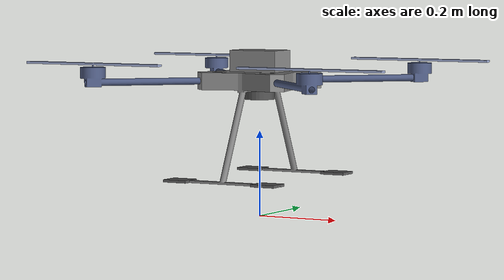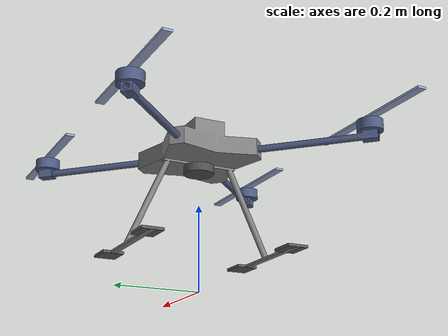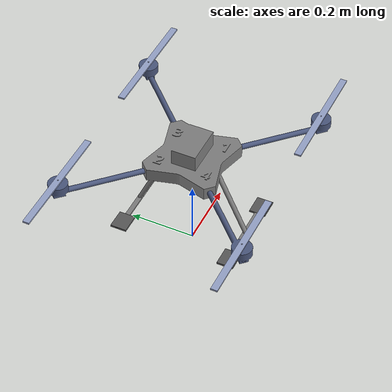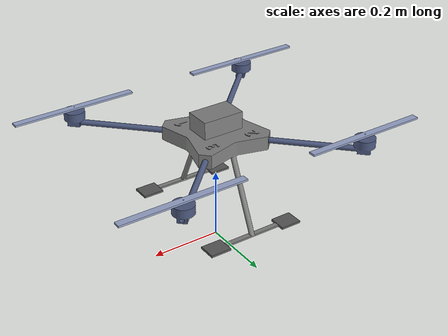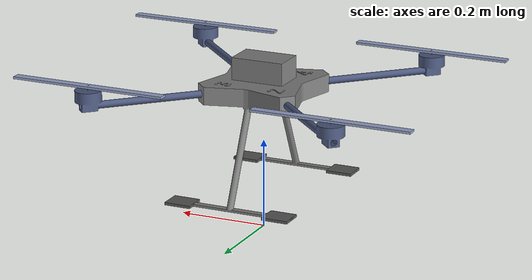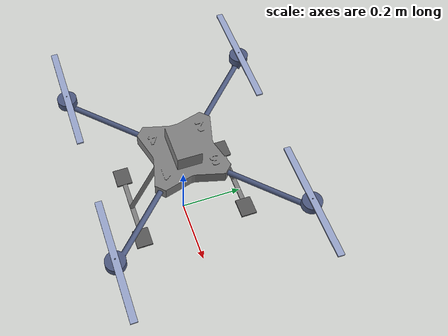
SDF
<?xml version="1.0" encoding="UTF-8"?>
<sdf version='1.9'>
  <model name='hillstar_base'>
    <pose>0 0 0.30 0 0 0</pose>
    <self_collide>false</self_collide>
    <static>false</static>
    <link name='base_link'>
      <pose>0 0 0 0 0 0</pose>
      <gravity>true</gravity>
      <velocity_decay/>
      <inertial>
        <mass>3.26</mass>
        <inertia>
          <ixx>0.0205</ixx>
          <iyy>0.0177</iyy>
          <izz>0.0225</izz>
          <ixy>0</ixy>
          <ixz>0</ixz>
          <iyz>0</iyz>
        </inertia>
      </inertial>
      <!-- Collision split into the body block + the 2 landing skids -->
      <!-- separately (not one solid box spanning the full bounding envelope -->
      <!-- like the original placeholder, and not my first "fix" which just -->
      <!-- matched the full mesh bounding box either) - a single box filled in -->
      <!-- the open space between/under the skids where an attachment needs -->
      <!-- to operate, so anything placed under the UAV hit that solid slab -->
      <!-- instead of the true legs, making it rest far higher than it should. -->
      <!-- Verified directly from the mesh: legs are 2 thin skids (not 4), -->
      <!-- each spanning the full x range at a fixed y band, found by -->
      <!-- clustering outer-radius (>=0.10), low-z (<0) vertices by angle - -->
      <!-- skid 1: x[-0.145,0.145] y[-0.179,-0.164] z[-0.210,-0.205]; -->
      <!-- skid 2: x[-0.145,0.145] y[0.164,0.179] z[-0.210,-0.205]. -->
      <!-- Body block (central column, radius<0.10 from the stl's own -->
      <!-- vertices) spans z -0.005..0.09; approximated here as a 0.20x0.20 -->
      <!-- box (that radius) since it's not the exact body cross-section. -->
      <collision name="collision_base_link">
        <pose>0 0 0.0425 0 0 0</pose>
        <geometry>
          <box>
            <size>0.20 0.20 0.095</size>
          </box>
        </geometry>
      </collision>
      <collision name="collision_leg_left">
        <pose>0 -0.1715 -0.2075 0 0 0</pose>
        <geometry>
          <box>
            <size>0.29 0.015 0.005</size>
          </box>
        </geometry>
      </collision>
      <collision name="collision_leg_right">
        <pose>0 0.1715 -0.2075 0 0 0</pose>
        <geometry>
          <box>
            <size>0.29 0.015 0.005</size>
          </box>
        </geometry>
      </collision>

      <collision name="collision_foot_pad_fl">
        <pose>0.115 -0.1715 -0.207 0 0 0</pose>
        <geometry>
          <box>
            <size>0.06 0.05 0.006</size>
          </box>
        </geometry>
      </collision>
      <collision name="collision_foot_pad_bl">
        <pose>-0.115 -0.1715 -0.207 0 0 0</pose>
        <geometry>
          <box>
            <size>0.06 0.05 0.006</size>
          </box>
        </geometry>
      </collision>
      <collision name="collision_foot_pad_fr">
        <pose>0.115 0.1715 -0.207 0 0 0</pose>
        <geometry>
          <box>
            <size>0.06 0.05 0.006</size>
          </box>
        </geometry>
      </collision>
      <collision name="collision_foot_pad_br">
        <pose>-0.115 0.1715 -0.207 0 0 0</pose>
        <geometry>
          <box>
            <size>0.06 0.05 0.006</size>
          </box>
        </geometry>
      </collision>
      <visual name="visual_foot_pad_fl">
        <pose>0.115 -0.1715 -0.207 0 0 0</pose>
        <geometry>
          <box>
            <size>0.06 0.05 0.006</size>
          </box>
        </geometry>
        <material>
          <ambient>0.15 0.15 0.15 1</ambient>
          <diffuse>0.35 0.35 0.35 1</diffuse>
          <specular>0.25 0.25 0.25 1</specular>
        </material>
      </visual>
      <visual name="visual_foot_pad_bl">
        <pose>-0.115 -0.1715 -0.207 0 0 0</pose>
        <geometry>
          <box>
            <size>0.06 0.05 0.006</size>
          </box>
        </geometry>
        <material>
          <ambient>0.15 0.15 0.15 1</ambient>
          <diffuse>0.35 0.35 0.35 1</diffuse>
          <specular>0.25 0.25 0.25 1</specular>
        </material>
      </visual>
      <visual name="visual_foot_pad_fr">
        <pose>0.115 0.1715 -0.207 0 0 0</pose>
        <geometry>
          <box>
            <size>0.06 0.05 0.006</size>
          </box>
        </geometry>
        <material>
          <ambient>0.15 0.15 0.15 1</ambient>
          <diffuse>0.35 0.35 0.35 1</diffuse>
          <specular>0.25 0.25 0.25 1</specular>
        </material>
      </visual>
      <visual name="visual_foot_pad_br">
        <pose>-0.115 0.1715 -0.207 0 0 0</pose>
        <geometry>
          <box>
            <size>0.06 0.05 0.006</size>
          </box>
        </geometry>
        <material>
          <ambient>0.15 0.15 0.15 1</ambient>
          <diffuse>0.35 0.35 0.35 1</diffuse>
          <specular>0.25 0.25 0.25 1</specular>
        </material>
      </visual>

      <visual name='visual_base_link'>
        <pose>0 0 0 0 0 0</pose>
        <geometry>
          <mesh>
          <uri>model://hillstar/stl_files/body_frame_subassembly.stl</uri>
          </mesh>
        </geometry>
        <material>
          <ambient>0.2 0.2 0.2 1</ambient>
          <diffuse>0.5 0.5 0.5 1</diffuse>
          <specular>0.25 0.25 0.25 1</specular>
        </material>
      </visual>

      <!-- Attachment mount boss: modeled as part of base_link itself (not a -->
      <!-- separate link+fixed-joint) so an attachment's joints (gripper, -->
      <!-- manipulator, etc.) can parent directly off base_link, matching the -->
      <!-- arm/prop joints elsewhere in this file - a revolute joint hanging -->
      <!-- off a link that is itself fixed-jointed to the root was found to -->
      <!-- silently not actuate. This boss is the shared physical mounting -->
      <!-- point every attachment model (see rigid_arm_3link, and hillstar's -->
      <!-- own embedded gripper) bolts its first joint to. -->
      <!-- Mounted flush under the actual body BLOCK (not the leg-inclusive -->
      <!-- collision envelope above): analyzing the mesh's own vertices -->
      <!-- (radius < 0.10 from the center axis, i.e. excluding the splayed -->
      <!-- legs/arm mounts) shows the block itself spans z -0.005..+0.09, so -->
      <!-- its real bottom is -0.005, not the legs' foot level (-0.21). -->
      <collision name="collision_gripper_mount">
        <pose>0 0 -0.015 0 0 0</pose>
        <geometry>
          <cylinder><radius>0.035</radius><length>0.02</length></cylinder>
        </geometry>
      </collision>
      <visual name="visual_gripper_mount">
        <pose>0 0 -0.015 0 0 0</pose>
        <geometry>
          <cylinder><radius>0.035</radius><length>0.02</length></cylinder>
        </geometry>
        <material>
          <ambient>0.2 0.2 0.2 1</ambient>
          <diffuse>0.3 0.3 0.3 1</diffuse>
        </material>
      </visual>

      <!-- the sensors attached on the main body should go here -->
      <sensor name="air_pressure_sensor" type="air_pressure">
        <always_on>1</always_on>
        <update_rate>50</update_rate>
        <air_pressure>
          <pressure>
            <noise type="gaussian">
              <mean>0</mean>
              <stddev>0.01</stddev>
            </noise>
          </pressure>
        </air_pressure>
      </sensor>
      <sensor name="imu_sensor" type="imu">
        <always_on>1</always_on>
        <update_rate>250</update_rate>
        <imu>
          <angular_velocity>
            <x>
              <noise type="gaussian">
                <mean>0</mean>
                <stddev>0.00018665</stddev>
                <dynamic_bias_stddev>3.8785e-05</dynamic_bias_stddev>
                <dynamic_bias_correlation_time>1000</dynamic_bias_correlation_time>
              </noise>
            </x>
            <y>
              <noise type="gaussian">
                <mean>0</mean>
                <stddev>0.00018665</stddev>
                <dynamic_bias_stddev>3.8785e-05</dynamic_bias_stddev>
                <dynamic_bias_correlation_time>1000</dynamic_bias_correlation_time>
              </noise>
            </y>
            <z>
              <noise type="gaussian">
                <mean>0</mean>
                <stddev>0.00018665</stddev>
                <dynamic_bias_stddev>3.8785e-05</dynamic_bias_stddev>
                <dynamic_bias_correlation_time>1000</dynamic_bias_correlation_time>
              </noise>
            </z>
          </angular_velocity>
          <linear_acceleration>
            <x>
              <noise type="gaussian">
                <mean>0</mean>
                <stddev>0.00186</stddev>
                <dynamic_bias_stddev>0.006</dynamic_bias_stddev>
                <dynamic_bias_correlation_time>300</dynamic_bias_correlation_time>
              </noise>
            </x>
            <y>
              <noise type="gaussian">
                <mean>0</mean>
                <stddev>0.00186</stddev>
                <dynamic_bias_stddev>0.006</dynamic_bias_stddev>
                <dynamic_bias_correlation_time>300</dynamic_bias_correlation_time>
              </noise>
            </y>
            <z>
              <noise type="gaussian">
                <mean>0</mean>
                <stddev>0.00186</stddev>
                <dynamic_bias_stddev>0.006</dynamic_bias_stddev>
                <dynamic_bias_correlation_time>300</dynamic_bias_correlation_time>
              </noise>
            </z>
          </linear_acceleration>
        </imu>
      </sensor>
      <sensor name="navsat_sensor" type="navsat">
        <always_on>1</always_on>
        <update_rate>30</update_rate>
      </sensor>

      <!-- Forward/down-looking RGB camera for future AprilTag-based -->
      <!-- perception. Rigidly mounted under the front of the body (no -->
      <!-- separate link/joint needed - it never moves relative to base_link), -->
      <!-- pitched 30 deg down from horizontal so it naturally frames the -->
      <!-- sloped wall ahead during a level approach. horizontal_fov=110deg -->
      <!-- with a 4:3 image was sized so the wall's full 5.5m width fits in -->
      <!-- frame from ~3.9m out (verified by computing the actual wall-corner -->
      <!-- angles from that standoff) - covering the whole 5.5m-wide wall from -->
      <!-- only ~1m away would need a ~170+ deg fisheye, which would badly -->
      <!-- distort the AprilTags right when you need them most accurate. -->
      <sensor name="camera_sensor" type="camera">
        <pose>0.1 0 -0.03 0 0.5236 0</pose>
        <always_on>1</always_on>
        <update_rate>20</update_rate>
        <topic>hillstar/camera</topic>
        <camera>
          <horizontal_fov>1.91986</horizontal_fov>
          <image>
            <width>1280</width>
            <height>960</height>
            <format>R8G8B8</format>
          </image>
          <clip>
            <near>0.05</near>
            <far>50</far>
          </clip>
        </camera>
      </sensor>
    </link>

    <!-- ARM - 0 -->
    <!-- The link for individual arm assembly -->
    <link name = "arm_0">
      <gravity>true</gravity>
      <self_collide>false</self_collide>
      <velocity_decay/>
      <pose>0.102 -0.102 0.02 0 0 0.785</pose>
      <inertial>
        <mass>0.2</mass>
          <inertia>
            <ixx>9.1e-4</ixx>
            <iyy>7.1e-5</iyy>
            <izz>9.1e-4</izz>
          </inertia>
      </inertial>
      <visual name='visual_arm_assembly_0'>
        <pose>0 0 0 0 0 0</pose>
        <geometry>
          <mesh>
            <uri>model://hillstar/stl_files/arm.stl</uri>
          </mesh>
        </geometry>
        <material>
          <ambient>0.25 0.3 0.4 1.0</ambient>
          <diffuse>0.3 0.35 0.5 1.0</diffuse>
          <specular>0.3 0.3 0.3 1.0</specular>
          <emissive>0.0 0.0 0.0 0.0</emissive>
        </material>
      </visual>
      <collision name='collision_arm_assembly_0'>
        <pose>0 -0.135 0 0 0 0</pose>
        <!-- origin is at the mounting point, shifting it to Center of Geometry -->
        <geometry>
          <box>
            <size>0.06 0.27 0.045</size>
          </box>
        </geometry>
      </collision>
    </link>

    <!-- The joint for tilting arm_0 -->
    <joint name="tilt_arm_0" type="revolute">
      <parent>base_link</parent>
      <child>arm_0</child>
      <axis>
        <xyz>0 -1 0</xyz>
        <limit>
          <lower>-1.5707</lower>
          <upper>1.5707</upper>
          <effort>3.5</effort>
          <velocity>6.0</velocity>
        </limit>
        <dynamics>
          <damping>0.2</damping>
          <friction>0.025</friction>
        </dynamics>
      </axis>
    </joint>

    <!-- Joint Control for the tilting motor-0 -->
    <plugin filename="gz-sim-joint-position-controller-system" name="gz::sim::systems::JointPositionController">
      <joint_name>tilt_arm_0</joint_name>
      <initial_position>0</initial_position>
      <sub_topic>servo_0</sub_topic>
      <p_gain>8.0</p_gain>
      <i_gain>0.1</i_gain>
      <d_gain>0.3</d_gain>
    </plugin>

    <!-- Link for the propeller-0 -->
    <link name = "prop_0">
      <gravity>true</gravity>
      <self_collide>false</self_collide>
      <velocity_decay/>
      <pose>0.28 -0.28 0.06 0 0 0</pose>
      <inertial>
        <mass>0.025</mass>
          <inertia>
            <ixx>8.8e-07</ixx>
            <iyy>2.6e-04</iyy>
            <izz>2.6e-04</izz>
          </inertia>
      </inertial>
      <visual name='visual_prop_0'>
        <geometry>
          <mesh>
            <uri>model://hillstar/stl_files/prop.stl</uri>
          </mesh>
        </geometry>
        <material>
          <ambient>0.3 0.32 0.36 1</ambient>
          <diffuse>0.6 0.65 0.8 1</diffuse>
          <specular>0.4 0.45 0.55 1</specular>
        </material>
      </visual>
      <collision name='collision_prop_0'>
        <geometry>
          <mesh>
            <uri>model://hillstar/stl_files/prop.stl</uri>
          </mesh>
        </geometry>
      </collision>
    </link>

    <!-- Joint for the propeller-0 -->
    <joint name="rotor_0_joint" type="revolute">
      <parent>arm_0</parent>
      <child>prop_0</child>
      <axis>
        <xyz>0 0 1</xyz>
        <dynamics>
          <spring_reference>0</spring_reference>
          <spring_stiffness>0</spring_stiffness>
        </dynamics>
      </axis>
    </joint>

    <!-- Motor object for the propeller-0 -->
    <plugin filename="gz-sim-multicopter-motor-model-system" name="gz::sim::systems::MulticopterMotorModel">
      <jointName>rotor_0_joint</jointName>
      <linkName>prop_0</linkName>
      <turningDirection>ccw</turningDirection>
      <timeConstantUp>0.015</timeConstantUp>
      <timeConstantDown>0.03</timeConstantDown>
      <maxRotVelocity>855</maxRotVelocity>
      <motorConstant>3.5e-5</motorConstant>
      <momentConstant>0.017</momentConstant>
      <commandSubTopic>command/motor_speed</commandSubTopic>
      <motorNumber>0</motorNumber>
      <rotorDragCoefficient>8.06428e-05</rotorDragCoefficient>
      <rollingMomentCoefficient>1e-06</rollingMomentCoefficient>
      <rotorVelocitySlowdownSim>10</rotorVelocitySlowdownSim>
      <motorType>velocity</motorType>
    </plugin>

    <!-- ARM - 1 -->
    <!-- The link for individual arm assembly -->
    <link name = "arm_1">
      <gravity>true</gravity>
      <self_collide>false</self_collide>
      <velocity_decay/>
      <pose>-0.102 0.102 0.02 0 0 -2.356</pose>
      <inertial>
        <mass>0.2</mass>
          <inertia>
            <ixx>9.1e-4</ixx>
            <iyy>7.1e-5</iyy>
            <izz>9.1e-4</izz>
          </inertia>
      </inertial>
      <visual name='visual_arm_assembly_1'>
        <pose>0 0 0 0 0 0</pose>
        <geometry>
          <mesh>
            <uri>model://hillstar/stl_files/arm.stl</uri>
          </mesh>
        </geometry>
        <material>
          <ambient>0.25 0.3 0.4 1.0</ambient>
          <diffuse>0.3 0.35 0.5 1.0</diffuse>
          <specular>0.3 0.3 0.3 1.0</specular>
          <emissive>0.0 0.0 0.0 0.0</emissive>
        </material>
      </visual>
      <collision name='collision_arm_assembly_1'>
        <pose>0 -0.135 0 0 0 0</pose>
        <!-- origin is at the mounting point, shifting it to Center of Geometry -->
        <geometry>
          <box>
            <size>0.06 0.27 0.045</size>
          </box>
        </geometry>
      </collision>
    </link>

    <!-- The joint for tilting arm_1 -->
    <joint name="tilt_arm_1" type="revolute">
      <parent>base_link</parent>
      <child>arm_1</child>
      <axis>
        <xyz>0 -1 0</xyz>
        <limit>
          <lower>-1.5707</lower>
          <upper>1.5707</upper>
          <effort>3.5</effort>
          <velocity>6.0</velocity>
        </limit>
        <dynamics>
          <damping>0.2</damping>
          <friction>0.025</friction>
        </dynamics>
      </axis>
    </joint>

    <!-- Joint Control for the tilting motor-1 -->
    <plugin filename="gz-sim-joint-position-controller-system" name="gz::sim::systems::JointPositionController">
      <joint_name>tilt_arm_1</joint_name>
      <initial_position>0</initial_position>
      <sub_topic>servo_1</sub_topic>
      <p_gain>8.0</p_gain>
      <i_gain>0.1</i_gain>
      <d_gain>0.3</d_gain>
    </plugin>

    <!-- Link for the propeller-1 -->
    <link name = "prop_1">
      <gravity>true</gravity>
      <self_collide>false</self_collide>
      <velocity_decay/>
      <pose>-0.28 0.28 0.06 0 0 0</pose>
      <inertial>
        <mass>0.025</mass>
          <inertia>
            <ixx>8.8e-07</ixx>
            <iyy>2.6e-04</iyy>
            <izz>2.6e-04</izz>
          </inertia>
      </inertial>
      <visual name='visual_prop_1'>
        <geometry>
          <mesh>
            <uri>model://hillstar/stl_files/prop.stl</uri>
          </mesh>
        </geometry>
        <material>
          <ambient>0.3 0.32 0.36 1</ambient>
          <diffuse>0.6 0.65 0.8 1</diffuse>
          <specular>0.4 0.45 0.55 1</specular>
        </material>
      </visual>
      <collision name='collision_prop_1'>
        <geometry>
          <mesh>
            <uri>model://hillstar/stl_files/prop.stl</uri>
          </mesh>
        </geometry>
      </collision>
    </link>

    <!-- Joint for the propeller-1 -->
    <joint name="rotor_1_joint" type="revolute">
      <parent>arm_1</parent>
      <child>prop_1</child>
      <axis>
        <xyz>0 0 1</xyz>
        <dynamics>
          <spring_reference>0</spring_reference>
          <spring_stiffness>0</spring_stiffness>
        </dynamics>
      </axis>
    </joint>

    <!-- Motor object for the propeller-1 -->
    <plugin filename="gz-sim-multicopter-motor-model-system" name="gz::sim::systems::MulticopterMotorModel">
      <jointName>rotor_1_joint</jointName>
      <linkName>prop_1</linkName>
      <turningDirection>ccw</turningDirection>
      <timeConstantUp>0.015</timeConstantUp>
      <timeConstantDown>0.03</timeConstantDown>
      <maxRotVelocity>855</maxRotVelocity>
      <motorConstant>3.5e-5</motorConstant>
      <momentConstant>0.017</momentConstant>
      <commandSubTopic>command/motor_speed</commandSubTopic>
      <motorNumber>1</motorNumber>
      <rotorDragCoefficient>8.06428e-05</rotorDragCoefficient>
      <rollingMomentCoefficient>1e-06</rollingMomentCoefficient>
      <rotorVelocitySlowdownSim>10</rotorVelocitySlowdownSim>
      <motorType>velocity</motorType>
    </plugin>

    <!-- ARM - 2 -->
    <!-- The link for individual arm assembly -->
    <link name = "arm_2">
      <gravity>true</gravity>
      <self_collide>false</self_collide>
      <velocity_decay/>
      <pose>0.102 0.102 0.02 0 0 2.356</pose>
      <inertial>
        <mass>0.2</mass>
          <inertia>
            <ixx>9.1e-4</ixx>
            <iyy>7.1e-5</iyy>
            <izz>9.1e-4</izz>
          </inertia>
      </inertial>
      <visual name='visual_arm_assembly_2'>
        <pose>0 0 0 0 0 0</pose>
        <geometry>
          <mesh>
            <uri>model://hillstar/stl_files/arm.stl</uri>
          </mesh>
        </geometry>
        <material>
          <ambient>0.25 0.3 0.4 1.0</ambient>
          <diffuse>0.3 0.35 0.5 1.0</diffuse>
          <specular>0.3 0.3 0.3 1.0</specular>
          <emissive>0.0 0.0 0.0 0.0</emissive>
        </material>
      </visual>
      <collision name='collision_arm_assembly_2'>
        <pose>0 -0.135 0 0 0 0</pose>
        <!-- origin is at the mounting point, shifting it to Center of Geometry -->
        <geometry>
          <box>
            <size>0.06 0.27 0.045</size>
          </box>
        </geometry>
      </collision>
    </link>

    <!-- The joint for tilting arm_2 -->
    <joint name="tilt_arm_2" type="revolute">
      <parent>base_link</parent>
      <child>arm_2</child>
      <axis>
        <xyz>0 -1 0</xyz>
        <limit>
          <lower>-1.5707</lower>
          <upper>1.5707</upper>
          <effort>3.5</effort>
          <velocity>6.0</velocity>
        </limit>
        <dynamics>
          <damping>0.2</damping>
          <friction>0.025</friction>
        </dynamics>
      </axis>
    </joint>

    <!-- Joint Control for the tilting motor-2 -->
    <plugin filename="gz-sim-joint-position-controller-system" name="gz::sim::systems::JointPositionController">
      <joint_name>tilt_arm_2</joint_name>
      <initial_position>0</initial_position>
      <sub_topic>servo_2</sub_topic>
      <p_gain>8.0</p_gain>
      <i_gain>0.1</i_gain>
      <d_gain>0.3</d_gain>
    </plugin>

    <!-- Link for the propeller-2 -->
    <link name = "prop_2">
      <gravity>true</gravity>
      <self_collide>false</self_collide>
      <velocity_decay/>
      <pose>0.28 0.28 0.06 0 0 0</pose>
      <inertial>
        <mass>0.025</mass>
          <inertia>
            <ixx>8.8e-07</ixx>
            <iyy>2.6e-04</iyy>
            <izz>2.6e-04</izz>
          </inertia>
      </inertial>
      <visual name='visual_prop_2'>
        <geometry>
          <mesh>
            <uri>model://hillstar/stl_files/prop.stl</uri>
          </mesh>
        </geometry>
        <material>
          <ambient>0.3 0.32 0.36 1</ambient>
          <diffuse>0.6 0.65 0.8 1</diffuse>
          <specular>0.4 0.45 0.55 1</specular>
        </material>
      </visual>
      <collision name='collision_prop_2'>
        <geometry>
          <mesh>
            <uri>model://hillstar/stl_files/prop.stl</uri>
          </mesh>
        </geometry>
      </collision>
    </link>

    <!-- Joint for the propeller-2 -->
    <joint name="rotor_2_joint" type="revolute">
      <parent>arm_2</parent>
      <child>prop_2</child>
      <axis>
        <xyz>0 0 1</xyz>
        <dynamics>
          <spring_reference>0</spring_reference>
          <spring_stiffness>0</spring_stiffness>
        </dynamics>
      </axis>
    </joint>

    <!-- Motor object for the propeller-2 -->
    <plugin filename="gz-sim-multicopter-motor-model-system" name="gz::sim::systems::MulticopterMotorModel">
      <jointName>rotor_2_joint</jointName>
      <linkName>prop_2</linkName>
      <turningDirection>cw</turningDirection>
      <timeConstantUp>0.015</timeConstantUp>
      <timeConstantDown>0.03</timeConstantDown>
      <maxRotVelocity>855</maxRotVelocity>
      <motorConstant>3.5e-5</motorConstant>
      <momentConstant>0.017</momentConstant>
      <commandSubTopic>command/motor_speed</commandSubTopic>
      <motorNumber>2</motorNumber>
      <rotorDragCoefficient>8.06428e-05</rotorDragCoefficient>
      <rollingMomentCoefficient>1e-06</rollingMomentCoefficient>
      <rotorVelocitySlowdownSim>10</rotorVelocitySlowdownSim>
      <motorType>velocity</motorType>
    </plugin>

        <!-- ARM - 3 -->
    <!-- The link for individual arm assembly -->
    <link name = "arm_3">
      <gravity>true</gravity>
      <self_collide>false</self_collide>
      <velocity_decay/>
      <pose>-0.102 -0.102 0.02 0 0 -0.785</pose>
      <inertial>
        <mass>0.2</mass>
          <inertia>
            <ixx>9.1e-4</ixx>
            <iyy>7.1e-5</iyy>
            <izz>9.1e-4</izz>
          </inertia>
      </inertial>
      <visual name='visual_arm_assembly_3'>
        <pose>0 0 0 0 0 0</pose>
        <geometry>
          <mesh>
            <uri>model://hillstar/stl_files/arm.stl</uri>
          </mesh>
        </geometry>
        <material>
          <ambient>0.25 0.3 0.4 1.0</ambient>
          <diffuse>0.3 0.35 0.5 1.0</diffuse>
          <specular>0.3 0.3 0.3 1.0</specular>
          <emissive>0.0 0.0 0.0 0.0</emissive>
        </material>
      </visual>
      <collision name='collision_arm_assembly_3'>
        <pose>0 -0.135 0 0 0 0</pose>
        <!-- origin is at the mounting point, shifting it to Center of Geometry -->
        <geometry>
          <box>
            <size>0.06 0.27 0.045</size>
          </box>
        </geometry>
      </collision>
    </link>

    <!-- The joint for tilting arm_3 -->
    <joint name="tilt_arm_3" type="revolute">
      <parent>base_link</parent>
      <child>arm_3</child>
      <axis>
        <xyz>0 -1 0</xyz>
        <limit>
          <lower>-1.5707</lower>
          <upper>1.5707</upper>
          <effort>3.5</effort>
          <velocity>6.0</velocity>
        </limit>
        <dynamics>
          <damping>0.2</damping>
          <friction>0.025</friction>
        </dynamics>
      </axis>
    </joint>

    <!-- Joint Control for the tilting motor-3 -->
    <plugin filename="gz-sim-joint-position-controller-system" name="gz::sim::systems::JointPositionController">
      <joint_name>tilt_arm_3</joint_name>
      <initial_position>0</initial_position>
      <sub_topic>servo_3</sub_topic>
      <p_gain>8.0</p_gain>
      <i_gain>0.1</i_gain>
      <d_gain>0.3</d_gain>
    </plugin>

    <!-- Link for the propeller-3 -->
    <link name = "prop_3">
      <gravity>true</gravity>
      <self_collide>false</self_collide>
      <velocity_decay/>
      <pose>-0.28 -0.28 0.06 0 0 0</pose>
      <inertial>
        <mass>0.025</mass>
          <inertia>
            <ixx>8.8e-07</ixx>
            <iyy>2.6e-04</iyy>
            <izz>2.6e-04</izz>
          </inertia>
      </inertial>
      <visual name='visual_prop_3'>
        <geometry>
          <mesh>
            <uri>model://hillstar/stl_files/prop.stl</uri>
          </mesh>
        </geometry>
        <material>
          <ambient>0.3 0.32 0.36 1</ambient>
          <diffuse>0.6 0.65 0.8 1</diffuse>
          <specular>0.4 0.45 0.55 1</specular>
        </material>
      </visual>
      <collision name='collision_prop_3'>
        <geometry>
          <mesh>
            <uri>model://hillstar/stl_files/prop.stl</uri>
          </mesh>
        </geometry>
      </collision>
    </link>

    <!-- Joint for the propeller-3 -->
    <joint name="rotor_3_joint" type="revolute">
      <parent>arm_3</parent>
      <child>prop_3</child>
      <axis>
        <xyz>0 0 1</xyz>
        <dynamics>
          <spring_reference>0</spring_reference>
          <spring_stiffness>0</spring_stiffness>
        </dynamics>
      </axis>
    </joint>

    <!-- Motor object for the propeller-3 -->
    <plugin filename="gz-sim-multicopter-motor-model-system" name="gz::sim::systems::MulticopterMotorModel">
      <jointName>rotor_3_joint</jointName>
      <linkName>prop_3</linkName>
      <turningDirection>cw</turningDirection>
      <timeConstantUp>0.015</timeConstantUp>
      <timeConstantDown>0.03</timeConstantDown>
      <maxRotVelocity>855</maxRotVelocity>
      <motorConstant>3.5e-5</motorConstant>
      <momentConstant>0.017</momentConstant>
      <commandSubTopic>command/motor_speed</commandSubTopic>
      <motorNumber>3</motorNumber>
      <rotorDragCoefficient>8.06428e-05</rotorDragCoefficient>
      <rollingMomentCoefficient>1e-06</rollingMomentCoefficient>
      <rotorVelocitySlowdownSim>10</rotorVelocitySlowdownSim>
      <motorType>velocity</motorType>
    </plugin>

    <plugin filename="gz-sim-joint-state-publisher-system" name="gz::sim::systems::JointStatePublisher">
      <topic>/hillstar/tilt_angles</topic>
      <joint_name>tilt_arm_0</joint_name>
      <joint_name>tilt_arm_1</joint_name>
      <joint_name>tilt_arm_2</joint_name>
      <joint_name>tilt_arm_3</joint_name>
    </plugin>

  </model>
</sdf>
